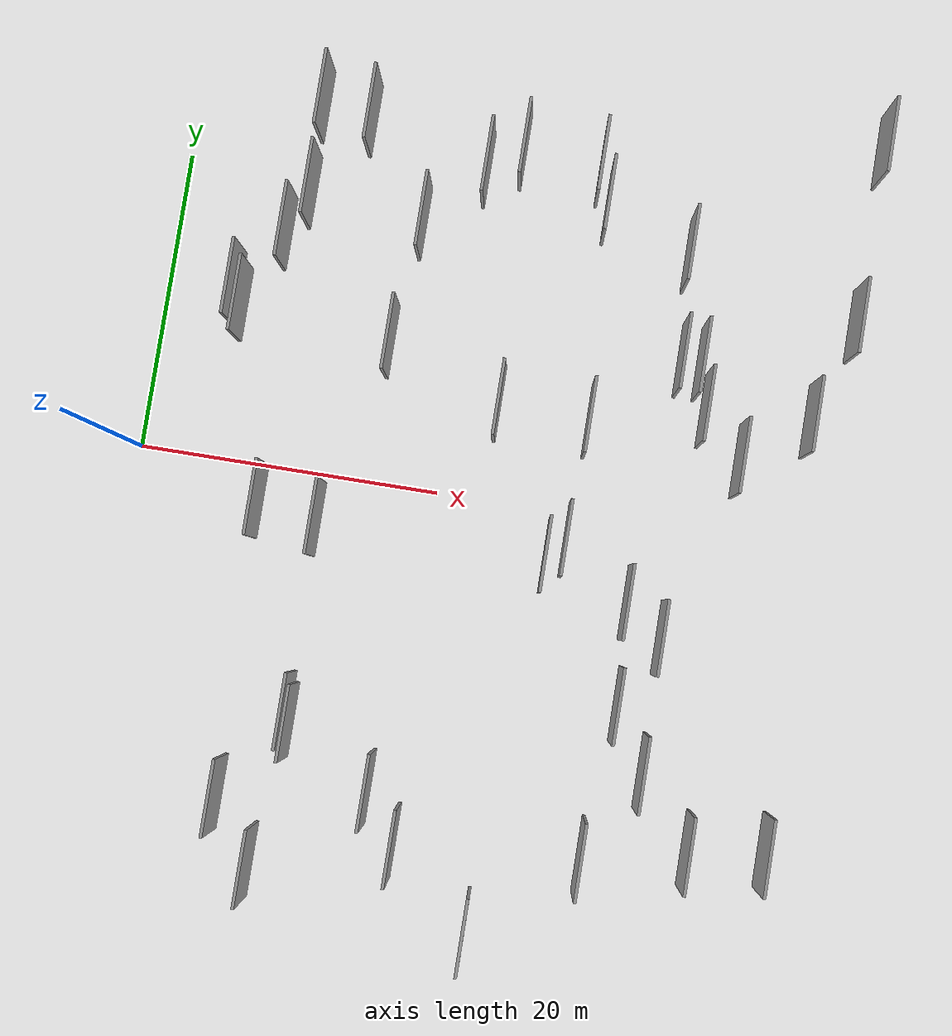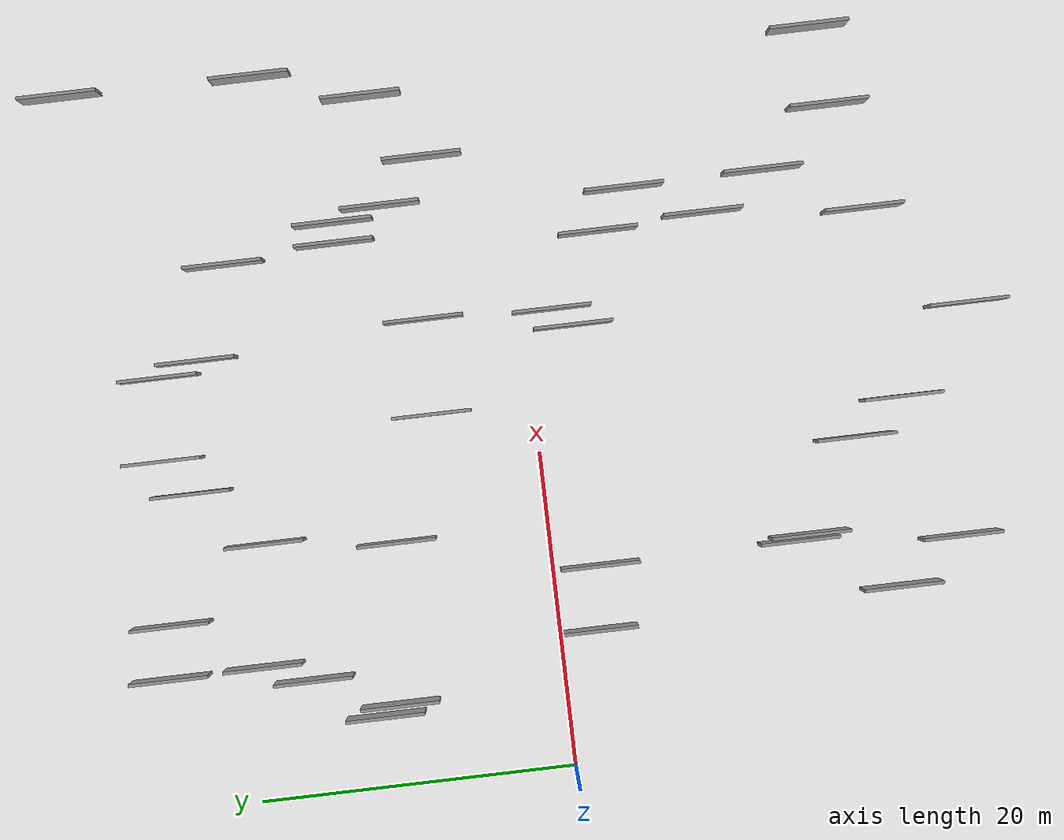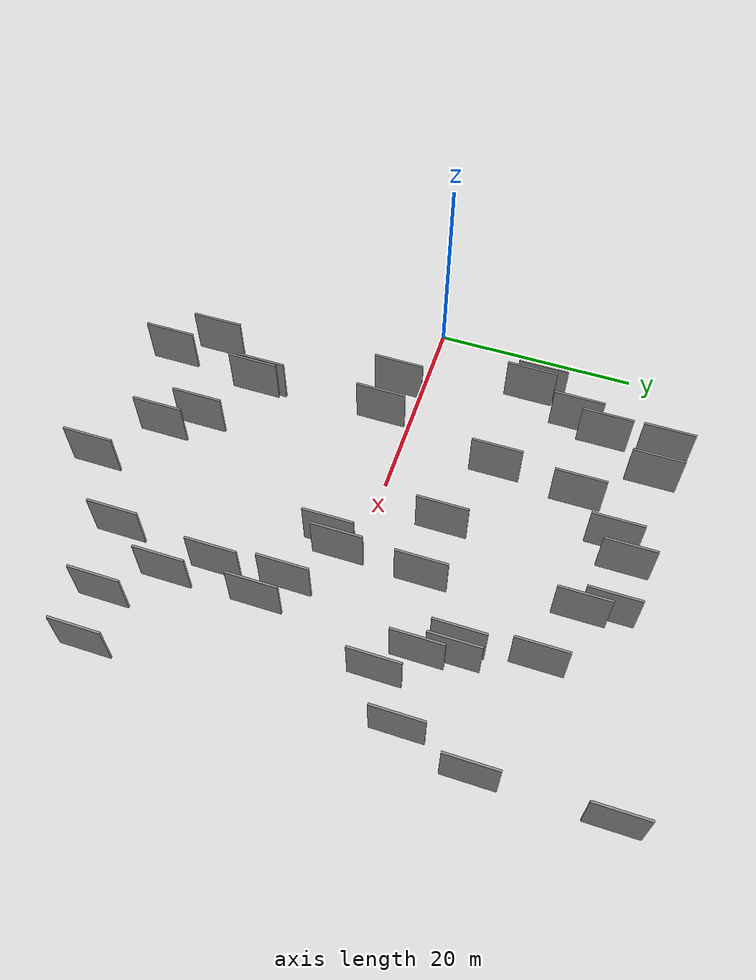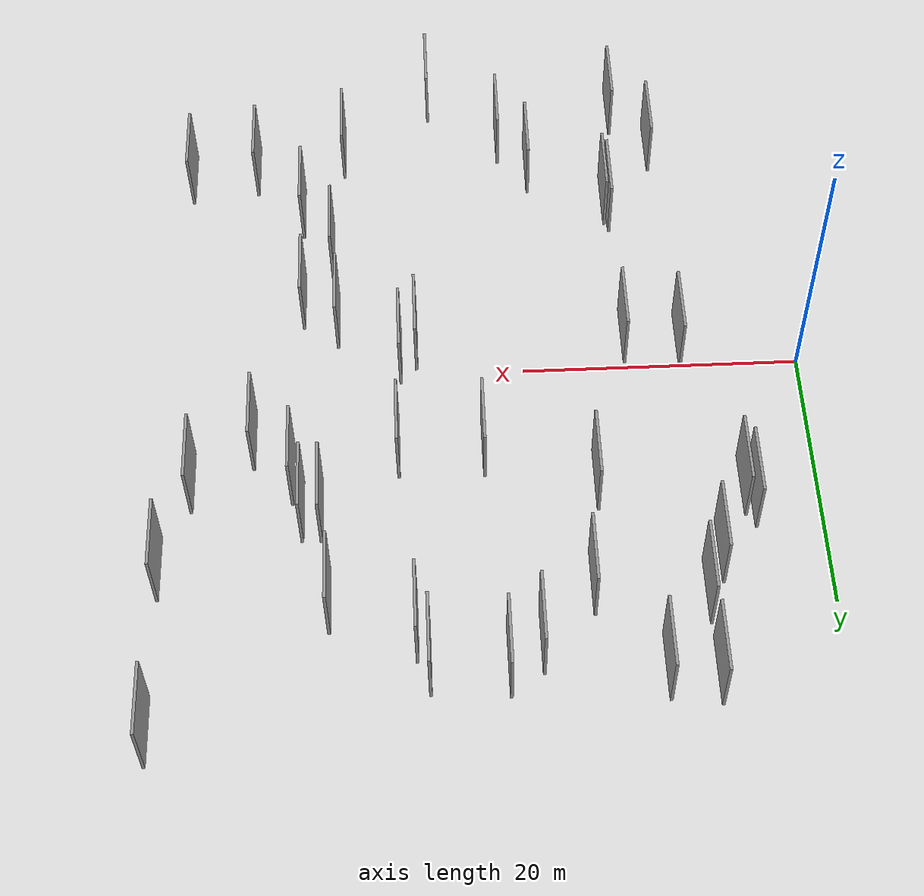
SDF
<sdf version="1.6">
 <world name="default">
  <scene>
   <sky><clouds><speed>12</speed></clouds></sky>
   <ambient>0.4 0.4 0.4 1</ambient>
   <background>0.7 0.7 0.7 1</background>
   <shadows>1</shadows>
  </scene>
  <gravity>0 0 -9.8066</gravity>
  <magnetic_field>6e-06 2.3e-05 -4.2e-05</magnetic_field>
  <physics default="0" name="default_physics" type="ode">
   <ode>
    <solver>
     <type>quick</type>
     <iters>10</iters>
     <sor>1.0</sor>
     <use_dynamic_moi_rescaling>0</use_dynamic_moi_rescaling>
    </solver>
    <constraints>
     <cfm>0</cfm>
     <erp>0.2</erp>
     <contact_max_correcting_vel>100</contact_max_correcting_vel>
     <contact_surface_layer>0.001</contact_surface_layer>
    </constraints>
   </ode>
   <max_step_size>0.004</max_step_size>
   <real_time_factor>1</real_time_factor>
   <real_time_update_rate>250</real_time_update_rate>
  </physics>
  <light name="sun" type="directional">
   <pose>0 0 10 0 0 0</pose>
   <diffuse>0.8 0.8 0.8 1</diffuse>
   <specular>0.2 0.2 0.2 1</specular>
   <attenuation>
    <range>1000</range>
    <constant>0.9</constant>
    <linear>0.01</linear>
    <quadratic>0.001</quadratic>
   </attenuation>
   <direction>-0.5 0.1 -0.9</direction>
  </light>
  <model name="grey_wall_1">
   <static>1</static>
   <pose>33.4776 -5.2390 0.0 0.000000 0.000000 1.570796</pose>
   <link name="link">
    <pose>0 0 2.50 0 0 0</pose>
    <collision name="collision"><geometry><box><size>5.00 0.2 5.00</size></box></geometry></collision>
    <visual name="visual">
     <cast_shadows>0</cast_shadows>
     <geometry><box><size>5.00 0.2 5.00</size></box></geometry>
     <material>
      <script>
       <uri>model://grey_wall/materials/scripts</uri>
       <uri>model://grey_wall/materials/textures</uri>
       <name>vrc/grey_wall</name>
      </script>
     </material>
    </visual>
   </link>
  </model>
  <model name="grey_wall_2">
   <static>1</static>
   <pose>43.6343 8.6065 0.0 0.000000 0.000000 1.570796</pose>
   <link name="link">
    <pose>0 0 2.50 0 0 0</pose>
    <collision name="collision"><geometry><box><size>5.00 0.2 5.00</size></box></geometry></collision>
    <visual name="visual">
     <cast_shadows>0</cast_shadows>
     <geometry><box><size>5.00 0.2 5.00</size></box></geometry>
     <material>
      <script>
       <uri>model://grey_wall/materials/scripts</uri>
       <uri>model://grey_wall/materials/textures</uri>
       <name>vrc/grey_wall</name>
      </script>
     </material>
    </visual>
   </link>
  </model>
  <model name="grey_wall_3">
   <static>1</static>
   <pose>7.4464 15.7247 0.0 0.000000 0.000000 1.570796</pose>
   <link name="link">
    <pose>0 0 2.50 0 0 0</pose>
    <collision name="collision"><geometry><box><size>5.00 0.2 5.00</size></box></geometry></collision>
    <visual name="visual">
     <cast_shadows>0</cast_shadows>
     <geometry><box><size>5.00 0.2 5.00</size></box></geometry>
     <material>
      <script>
       <uri>model://grey_wall/materials/scripts</uri>
       <uri>model://grey_wall/materials/textures</uri>
       <name>vrc/grey_wall</name>
      </script>
     </material>
    </visual>
   </link>
  </model>
  <model name="grey_wall_4">
   <static>1</static>
   <pose>32.9911 -21.9643 0.0 0.000000 0.000000 1.570796</pose>
   <link name="link">
    <pose>0 0 2.50 0 0 0</pose>
    <collision name="collision"><geometry><box><size>5.00 0.2 5.00</size></box></geometry></collision>
    <visual name="visual">
     <cast_shadows>0</cast_shadows>
     <geometry><box><size>5.00 0.2 5.00</size></box></geometry>
     <material>
      <script>
       <uri>model://grey_wall/materials/scripts</uri>
       <uri>model://grey_wall/materials/textures</uri>
       <name>vrc/grey_wall</name>
      </script>
     </material>
    </visual>
   </link>
  </model>
  <model name="grey_wall_5">
   <static>1</static>
   <pose>11.8727 24.2748 0.0 0.000000 0.000000 1.570796</pose>
   <link name="link">
    <pose>0 0 2.50 0 0 0</pose>
    <collision name="collision"><geometry><box><size>5.00 0.2 5.00</size></box></geometry></collision>
    <visual name="visual">
     <cast_shadows>0</cast_shadows>
     <geometry><box><size>5.00 0.2 5.00</size></box></geometry>
     <material>
      <script>
       <uri>model://grey_wall/materials/scripts</uri>
       <uri>model://grey_wall/materials/textures</uri>
       <name>vrc/grey_wall</name>
      </script>
     </material>
    </visual>
   </link>
  </model>
  <model name="grey_wall_6">
   <static>1</static>
   <pose>11.8024 -25.7305 0.0 0.000000 0.000000 1.570796</pose>
   <link name="link">
    <pose>0 0 2.50 0 0 0</pose>
    <collision name="collision"><geometry><box><size>5.00 0.2 5.00</size></box></geometry></collision>
    <visual name="visual">
     <cast_shadows>0</cast_shadows>
     <geometry><box><size>5.00 0.2 5.00</size></box></geometry>
     <material>
      <script>
       <uri>model://grey_wall/materials/scripts</uri>
       <uri>model://grey_wall/materials/textures</uri>
       <name>vrc/grey_wall</name>
      </script>
     </material>
    </visual>
   </link>
  </model>
  <model name="grey_wall_7">
   <static>1</static>
   <pose>26.3232 -27.7546 0.0 0.000000 0.000000 1.570796</pose>
   <link name="link">
    <pose>0 0 2.50 0 0 0</pose>
    <collision name="collision"><geometry><box><size>5.00 0.2 5.00</size></box></geometry></collision>
    <visual name="visual">
     <cast_shadows>0</cast_shadows>
     <geometry><box><size>5.00 0.2 5.00</size></box></geometry>
     <material>
      <script>
       <uri>model://grey_wall/materials/scripts</uri>
       <uri>model://grey_wall/materials/textures</uri>
       <name>vrc/grey_wall</name>
      </script>
     </material>
    </visual>
   </link>
  </model>
  <model name="grey_wall_8">
   <static>1</static>
   <pose>27.7636 -3.0162 0.0 0.000000 0.000000 1.570796</pose>
   <link name="link">
    <pose>0 0 2.50 0 0 0</pose>
    <collision name="collision"><geometry><box><size>5.00 0.2 5.00</size></box></geometry></collision>
    <visual name="visual">
     <cast_shadows>0</cast_shadows>
     <geometry><box><size>5.00 0.2 5.00</size></box></geometry>
     <material>
      <script>
       <uri>model://grey_wall/materials/scripts</uri>
       <uri>model://grey_wall/materials/textures</uri>
       <name>vrc/grey_wall</name>
      </script>
     </material>
    </visual>
   </link>
  </model>
  <model name="grey_wall_9">
   <static>1</static>
   <pose>39.4000 5.2313 0.0 0.000000 0.000000 1.570796</pose>
   <link name="link">
    <pose>0 0 2.50 0 0 0</pose>
    <collision name="collision"><geometry><box><size>5.00 0.2 5.00</size></box></geometry></collision>
    <visual name="visual">
     <cast_shadows>0</cast_shadows>
     <geometry><box><size>5.00 0.2 5.00</size></box></geometry>
     <material>
      <script>
       <uri>model://grey_wall/materials/scripts</uri>
       <uri>model://grey_wall/materials/textures</uri>
       <name>vrc/grey_wall</name>
      </script>
     </material>
    </visual>
   </link>
  </model>
  <model name="grey_wall_10">
   <static>1</static>
   <pose>5.2916 10.5052 0.0 0.000000 0.000000 1.570796</pose>
   <link name="link">
    <pose>0 0 2.50 0 0 0</pose>
    <collision name="collision"><geometry><box><size>5.00 0.2 5.00</size></box></geometry></collision>
    <visual name="visual">
     <cast_shadows>0</cast_shadows>
     <geometry><box><size>5.00 0.2 5.00</size></box></geometry>
     <material>
      <script>
       <uri>model://grey_wall/materials/scripts</uri>
       <uri>model://grey_wall/materials/textures</uri>
       <name>vrc/grey_wall</name>
      </script>
     </material>
    </visual>
   </link>
  </model>
  <model name="grey_wall_11">
   <static>1</static>
   <pose>8.5315 24.7250 0.0 0.000000 0.000000 1.570796</pose>
   <link name="link">
    <pose>0 0 2.50 0 0 0</pose>
    <collision name="collision"><geometry><box><size>5.00 0.2 5.00</size></box></geometry></collision>
    <visual name="visual">
     <cast_shadows>0</cast_shadows>
     <geometry><box><size>5.00 0.2 5.00</size></box></geometry>
     <material>
      <script>
       <uri>model://grey_wall/materials/scripts</uri>
       <uri>model://grey_wall/materials/textures</uri>
       <name>vrc/grey_wall</name>
      </script>
     </material>
    </visual>
   </link>
  </model>
  <model name="grey_wall_12">
   <static>1</static>
   <pose>4.6762 11.5054 0.0 0.000000 0.000000 1.570796</pose>
   <link name="link">
    <pose>0 0 2.50 0 0 0</pose>
    <collision name="collision"><geometry><box><size>5.00 0.2 5.00</size></box></geometry></collision>
    <visual name="visual">
     <cast_shadows>0</cast_shadows>
     <geometry><box><size>5.00 0.2 5.00</size></box></geometry>
     <material>
      <script>
       <uri>model://grey_wall/materials/scripts</uri>
       <uri>model://grey_wall/materials/textures</uri>
       <name>vrc/grey_wall</name>
      </script>
     </material>
    </visual>
   </link>
  </model>
  <model name="grey_wall_13">
   <static>1</static>
   <pose>35.9308 11.2643 0.0 0.000000 0.000000 1.570796</pose>
   <link name="link">
    <pose>0 0 2.50 0 0 0</pose>
    <collision name="collision"><geometry><box><size>5.00 0.2 5.00</size></box></geometry></collision>
    <visual name="visual">
     <cast_shadows>0</cast_shadows>
     <geometry><box><size>5.00 0.2 5.00</size></box></geometry>
     <material>
      <script>
       <uri>model://grey_wall/materials/scripts</uri>
       <uri>model://grey_wall/materials/textures</uri>
       <name>vrc/grey_wall</name>
      </script>
     </material>
    </visual>
   </link>
  </model>
  <model name="grey_wall_14">
   <static>1</static>
   <pose>19.9749 22.0375 0.0 0.000000 0.000000 1.570796</pose>
   <link name="link">
    <pose>0 0 2.50 0 0 0</pose>
    <collision name="collision"><geometry><box><size>5.00 0.2 5.00</size></box></geometry></collision>
    <visual name="visual">
     <cast_shadows>0</cast_shadows>
     <geometry><box><size>5.00 0.2 5.00</size></box></geometry>
     <material>
      <script>
       <uri>model://grey_wall/materials/scripts</uri>
       <uri>model://grey_wall/materials/textures</uri>
       <name>vrc/grey_wall</name>
      </script>
     </material>
    </visual>
   </link>
  </model>
  <model name="grey_wall_15">
   <static>1</static>
   <pose>23.1992 6.4730 0.0 0.000000 0.000000 1.570796</pose>
   <link name="link">
    <pose>0 0 2.50 0 0 0</pose>
    <collision name="collision"><geometry><box><size>5.00 0.2 5.00</size></box></geometry></collision>
    <visual name="visual">
     <cast_shadows>0</cast_shadows>
     <geometry><box><size>5.00 0.2 5.00</size></box></geometry>
     <material>
      <script>
       <uri>model://grey_wall/materials/scripts</uri>
       <uri>model://grey_wall/materials/textures</uri>
       <name>vrc/grey_wall</name>
      </script>
     </material>
    </visual>
   </link>
  </model>
  <model name="grey_wall_16">
   <static>1</static>
   <pose>8.6217 18.7740 0.0 0.000000 0.000000 1.570796</pose>
   <link name="link">
    <pose>0 0 2.50 0 0 0</pose>
    <collision name="collision"><geometry><box><size>5.00 0.2 5.00</size></box></geometry></collision>
    <visual name="visual">
     <cast_shadows>0</cast_shadows>
     <geometry><box><size>5.00 0.2 5.00</size></box></geometry>
     <material>
      <script>
       <uri>model://grey_wall/materials/scripts</uri>
       <uri>model://grey_wall/materials/textures</uri>
       <name>vrc/grey_wall</name>
      </script>
     </material>
    </visual>
   </link>
  </model>
  <model name="grey_wall_17">
   <static>1</static>
   <pose>22.2112 23.6121 0.0 0.000000 0.000000 1.570796</pose>
   <link name="link">
    <pose>0 0 2.50 0 0 0</pose>
    <collision name="collision"><geometry><box><size>5.00 0.2 5.00</size></box></geometry></collision>
    <visual name="visual">
     <cast_shadows>0</cast_shadows>
     <geometry><box><size>5.00 0.2 5.00</size></box></geometry>
     <material>
      <script>
       <uri>model://grey_wall/materials/scripts</uri>
       <uri>model://grey_wall/materials/textures</uri>
       <name>vrc/grey_wall</name>
      </script>
     </material>
    </visual>
   </link>
  </model>
  <model name="grey_wall_18">
   <static>1</static>
   <pose>36.1273 -15.9547 0.0 0.000000 0.000000 1.570796</pose>
   <link name="link">
    <pose>0 0 2.50 0 0 0</pose>
    <collision name="collision"><geometry><box><size>5.00 0.2 5.00</size></box></geometry></collision>
    <visual name="visual">
     <cast_shadows>0</cast_shadows>
     <geometry><box><size>5.00 0.2 5.00</size></box></geometry>
     <material>
      <script>
       <uri>model://grey_wall/materials/scripts</uri>
       <uri>model://grey_wall/materials/textures</uri>
       <name>vrc/grey_wall</name>
      </script>
     </material>
    </visual>
   </link>
  </model>
  <model name="grey_wall_19">
   <static>1</static>
   <pose>9.0757 -21.6731 0.0 0.000000 0.000000 1.570796</pose>
   <link name="link">
    <pose>0 0 2.50 0 0 0</pose>
    <collision name="collision"><geometry><box><size>5.00 0.2 5.00</size></box></geometry></collision>
    <visual name="visual">
     <cast_shadows>0</cast_shadows>
     <geometry><box><size>5.00 0.2 5.00</size></box></geometry>
     <material>
      <script>
       <uri>model://grey_wall/materials/scripts</uri>
       <uri>model://grey_wall/materials/textures</uri>
       <name>vrc/grey_wall</name>
      </script>
     </material>
    </visual>
   </link>
  </model>
  <model name="grey_wall_20">
   <static>1</static>
   <pose>12.6627 -15.5733 0.0 0.000000 0.000000 1.570796</pose>
   <link name="link">
    <pose>0 0 2.50 0 0 0</pose>
    <collision name="collision"><geometry><box><size>5.00 0.2 5.00</size></box></geometry></collision>
    <visual name="visual">
     <cast_shadows>0</cast_shadows>
     <geometry><box><size>5.00 0.2 5.00</size></box></geometry>
     <material>
      <script>
       <uri>model://grey_wall/materials/scripts</uri>
       <uri>model://grey_wall/materials/textures</uri>
       <name>vrc/grey_wall</name>
      </script>
     </material>
    </visual>
   </link>
  </model>
  <model name="grey_wall_21">
   <static>1</static>
   <pose>12.5439 -2.9651 0.0 0.000000 0.000000 1.570796</pose>
   <link name="link">
    <pose>0 0 2.50 0 0 0</pose>
    <collision name="collision"><geometry><box><size>5.00 0.2 5.00</size></box></geometry></collision>
    <visual name="visual">
     <cast_shadows>0</cast_shadows>
     <geometry><box><size>5.00 0.2 5.00</size></box></geometry>
     <material>
      <script>
       <uri>model://grey_wall/materials/scripts</uri>
       <uri>model://grey_wall/materials/textures</uri>
       <name>vrc/grey_wall</name>
      </script>
     </material>
    </visual>
   </link>
  </model>
  <model name="grey_wall_22">
   <static>1</static>
   <pose>16.3174 17.8196 0.0 0.000000 0.000000 1.570796</pose>
   <link name="link">
    <pose>0 0 2.50 0 0 0</pose>
    <collision name="collision"><geometry><box><size>5.00 0.2 5.00</size></box></geometry></collision>
    <visual name="visual">
     <cast_shadows>0</cast_shadows>
     <geometry><box><size>5.00 0.2 5.00</size></box></geometry>
     <material>
      <script>
       <uri>model://grey_wall/materials/scripts</uri>
       <uri>model://grey_wall/materials/textures</uri>
       <name>vrc/grey_wall</name>
      </script>
     </material>
    </visual>
   </link>
  </model>
  <model name="grey_wall_23">
   <static>1</static>
   <pose>28.2531 20.7871 0.0 0.000000 0.000000 1.570796</pose>
   <link name="link">
    <pose>0 0 2.50 0 0 0</pose>
    <collision name="collision"><geometry><box><size>5.00 0.2 5.00</size></box></geometry></collision>
    <visual name="visual">
     <cast_shadows>0</cast_shadows>
     <geometry><box><size>5.00 0.2 5.00</size></box></geometry>
     <material>
      <script>
       <uri>model://grey_wall/materials/scripts</uri>
       <uri>model://grey_wall/materials/textures</uri>
       <name>vrc/grey_wall</name>
      </script>
     </material>
    </visual>
   </link>
  </model>
  <model name="grey_wall_24">
   <static>1</static>
   <pose>34.6254 11.3175 0.0 0.000000 0.000000 1.570796</pose>
   <link name="link">
    <pose>0 0 2.50 0 0 0</pose>
    <collision name="collision"><geometry><box><size>5.00 0.2 5.00</size></box></geometry></collision>
    <visual name="visual">
     <cast_shadows>0</cast_shadows>
     <geometry><box><size>5.00 0.2 5.00</size></box></geometry>
     <material>
      <script>
       <uri>model://grey_wall/materials/scripts</uri>
       <uri>model://grey_wall/materials/textures</uri>
       <name>vrc/grey_wall</name>
      </script>
     </material>
    </visual>
   </link>
  </model>
  <model name="grey_wall_25">
   <static>1</static>
   <pose>39.7363 -20.5003 0.0 0.000000 0.000000 1.570796</pose>
   <link name="link">
    <pose>0 0 2.50 0 0 0</pose>
    <collision name="collision"><geometry><box><size>5.00 0.2 5.00</size></box></geometry></collision>
    <visual name="visual">
     <cast_shadows>0</cast_shadows>
     <geometry><box><size>5.00 0.2 5.00</size></box></geometry>
     <material>
      <script>
       <uri>model://grey_wall/materials/scripts</uri>
       <uri>model://grey_wall/materials/textures</uri>
       <name>vrc/grey_wall</name>
      </script>
     </material>
    </visual>
   </link>
  </model>
  <model name="grey_wall_26">
   <static>1</static>
   <pose>8.5256 -2.3839 0.0 0.000000 0.000000 1.570796</pose>
   <link name="link">
    <pose>0 0 2.50 0 0 0</pose>
    <collision name="collision"><geometry><box><size>5.00 0.2 5.00</size></box></geometry></collision>
    <visual name="visual">
     <cast_shadows>0</cast_shadows>
     <geometry><box><size>5.00 0.2 5.00</size></box></geometry>
     <material>
      <script>
       <uri>model://grey_wall/materials/scripts</uri>
       <uri>model://grey_wall/materials/textures</uri>
       <name>vrc/grey_wall</name>
      </script>
     </material>
    </visual>
   </link>
  </model>
  <model name="grey_wall_27">
   <static>1</static>
   <pose>15.4486 9.5688 0.0 0.000000 0.000000 1.570796</pose>
   <link name="link">
    <pose>0 0 2.50 0 0 0</pose>
    <collision name="collision"><geometry><box><size>5.00 0.2 5.00</size></box></geometry></collision>
    <visual name="visual">
     <cast_shadows>0</cast_shadows>
     <geometry><box><size>5.00 0.2 5.00</size></box></geometry>
     <material>
      <script>
       <uri>model://grey_wall/materials/scripts</uri>
       <uri>model://grey_wall/materials/textures</uri>
       <name>vrc/grey_wall</name>
      </script>
     </material>
    </visual>
   </link>
  </model>
  <model name="grey_wall_28">
   <static>1</static>
   <pose>12.9615 -16.2947 0.0 0.000000 0.000000 1.570796</pose>
   <link name="link">
    <pose>0 0 2.50 0 0 0</pose>
    <collision name="collision"><geometry><box><size>5.00 0.2 5.00</size></box></geometry></collision>
    <visual name="visual">
     <cast_shadows>0</cast_shadows>
     <geometry><box><size>5.00 0.2 5.00</size></box></geometry>
     <material>
      <script>
       <uri>model://grey_wall/materials/scripts</uri>
       <uri>model://grey_wall/materials/textures</uri>
       <name>vrc/grey_wall</name>
      </script>
     </material>
    </visual>
   </link>
  </model>
  <model name="grey_wall_29">
   <static>1</static>
   <pose>29.2244 6.2898 0.0 0.000000 0.000000 1.570796</pose>
   <link name="link">
    <pose>0 0 2.50 0 0 0</pose>
    <collision name="collision"><geometry><box><size>5.00 0.2 5.00</size></box></geometry></collision>
    <visual name="visual">
     <cast_shadows>0</cast_shadows>
     <geometry><box><size>5.00 0.2 5.00</size></box></geometry>
     <material>
      <script>
       <uri>model://grey_wall/materials/scripts</uri>
       <uri>model://grey_wall/materials/textures</uri>
       <name>vrc/grey_wall</name>
      </script>
     </material>
    </visual>
   </link>
  </model>
  <model name="grey_wall_30">
   <static>1</static>
   <pose>45.7859 27.4274 0.0 0.000000 0.000000 1.570796</pose>
   <link name="link">
    <pose>0 0 2.50 0 0 0</pose>
    <collision name="collision"><geometry><box><size>5.00 0.2 5.00</size></box></geometry></collision>
    <visual name="visual">
     <cast_shadows>0</cast_shadows>
     <geometry><box><size>5.00 0.2 5.00</size></box></geometry>
     <material>
      <script>
       <uri>model://grey_wall/materials/scripts</uri>
       <uri>model://grey_wall/materials/textures</uri>
       <name>vrc/grey_wall</name>
      </script>
     </material>
    </visual>
   </link>
  </model>
  <model name="grey_wall_31">
   <static>1</static>
   <pose>34.0822 18.3900 0.0 0.000000 0.000000 1.570796</pose>
   <link name="link">
    <pose>0 0 2.50 0 0 0</pose>
    <collision name="collision"><geometry><box><size>5.00 0.2 5.00</size></box></geometry></collision>
    <visual name="visual">
     <cast_shadows>0</cast_shadows>
     <geometry><box><size>5.00 0.2 5.00</size></box></geometry>
     <material>
      <script>
       <uri>model://grey_wall/materials/scripts</uri>
       <uri>model://grey_wall/materials/textures</uri>
       <name>vrc/grey_wall</name>
      </script>
     </material>
    </visual>
   </link>
  </model>
  <model name="grey_wall_32">
   <static>1</static>
   <pose>18.7188 -19.8204 0.0 0.000000 0.000000 1.570796</pose>
   <link name="link">
    <pose>0 0 2.50 0 0 0</pose>
    <collision name="collision"><geometry><box><size>5.00 0.2 5.00</size></box></geometry></collision>
    <visual name="visual">
     <cast_shadows>0</cast_shadows>
     <geometry><box><size>5.00 0.2 5.00</size></box></geometry>
     <material>
      <script>
       <uri>model://grey_wall/materials/scripts</uri>
       <uri>model://grey_wall/materials/textures</uri>
       <name>vrc/grey_wall</name>
      </script>
     </material>
    </visual>
   </link>
  </model>
  <model name="grey_wall_33">
   <static>1</static>
   <pose>36.6470 8.2010 0.0 0.000000 0.000000 1.570796</pose>
   <link name="link">
    <pose>0 0 2.50 0 0 0</pose>
    <collision name="collision"><geometry><box><size>5.00 0.2 5.00</size></box></geometry></collision>
    <visual name="visual">
     <cast_shadows>0</cast_shadows>
     <geometry><box><size>5.00 0.2 5.00</size></box></geometry>
     <material>
      <script>
       <uri>model://grey_wall/materials/scripts</uri>
       <uri>model://grey_wall/materials/textures</uri>
       <name>vrc/grey_wall</name>
      </script>
     </material>
    </visual>
   </link>
  </model>
  <model name="grey_wall_34">
   <static>1</static>
   <pose>45.6339 15.4020 0.0 0.000000 0.000000 1.570796</pose>
   <link name="link">
    <pose>0 0 2.50 0 0 0</pose>
    <collision name="collision"><geometry><box><size>5.00 0.2 5.00</size></box></geometry></collision>
    <visual name="visual">
     <cast_shadows>0</cast_shadows>
     <geometry><box><size>5.00 0.2 5.00</size></box></geometry>
     <material>
      <script>
       <uri>model://grey_wall/materials/scripts</uri>
       <uri>model://grey_wall/materials/textures</uri>
       <name>vrc/grey_wall</name>
      </script>
     </material>
    </visual>
   </link>
  </model>
  <model name="grey_wall_35">
   <static>1</static>
   <pose>44.7291 -19.8319 0.0 0.000000 0.000000 1.570796</pose>
   <link name="link">
    <pose>0 0 2.50 0 0 0</pose>
    <collision name="collision"><geometry><box><size>5.00 0.2 5.00</size></box></geometry></collision>
    <visual name="visual">
     <cast_shadows>0</cast_shadows>
     <geometry><box><size>5.00 0.2 5.00</size></box></geometry>
     <material>
      <script>
       <uri>model://grey_wall/materials/scripts</uri>
       <uri>model://grey_wall/materials/textures</uri>
       <name>vrc/grey_wall</name>
      </script>
     </material>
    </visual>
   </link>
  </model>
  <model name="grey_wall_36">
   <static>1</static>
   <pose>33.8765 -11.9014 0.0 0.000000 0.000000 1.570796</pose>
   <link name="link">
    <pose>0 0 2.50 0 0 0</pose>
    <collision name="collision"><geometry><box><size>5.00 0.2 5.00</size></box></geometry></collision>
    <visual name="visual">
     <cast_shadows>0</cast_shadows>
     <geometry><box><size>5.00 0.2 5.00</size></box></geometry>
     <material>
      <script>
       <uri>model://grey_wall/materials/scripts</uri>
       <uri>model://grey_wall/materials/textures</uri>
       <name>vrc/grey_wall</name>
      </script>
     </material>
    </visual>
   </link>
  </model>
  <model name="grey_wall_37">
   <static>1</static>
   <pose>28.9319 -1.7845 0.0 0.000000 0.000000 1.570796</pose>
   <link name="link">
    <pose>0 0 2.50 0 0 0</pose>
    <collision name="collision"><geometry><box><size>5.00 0.2 5.00</size></box></geometry></collision>
    <visual name="visual">
     <cast_shadows>0</cast_shadows>
     <geometry><box><size>5.00 0.2 5.00</size></box></geometry>
     <material>
      <script>
       <uri>model://grey_wall/materials/scripts</uri>
       <uri>model://grey_wall/materials/textures</uri>
       <name>vrc/grey_wall</name>
      </script>
     </material>
    </visual>
   </link>
  </model>
  <model name="grey_wall_38">
   <static>1</static>
   <pose>27.4513 23.2595 0.0 0.000000 0.000000 1.570796</pose>
   <link name="link">
    <pose>0 0 2.50 0 0 0</pose>
    <collision name="collision"><geometry><box><size>5.00 0.2 5.00</size></box></geometry></collision>
    <visual name="visual">
     <cast_shadows>0</cast_shadows>
     <geometry><box><size>5.00 0.2 5.00</size></box></geometry>
     <material>
      <script>
       <uri>model://grey_wall/materials/scripts</uri>
       <uri>model://grey_wall/materials/textures</uri>
       <name>vrc/grey_wall</name>
      </script>
     </material>
    </visual>
   </link>
  </model>
  <model name="grey_wall_39">
   <static>1</static>
   <pose>20.9148 -23.0282 0.0 0.000000 0.000000 1.570796</pose>
   <link name="link">
    <pose>0 0 2.50 0 0 0</pose>
    <collision name="collision"><geometry><box><size>5.00 0.2 5.00</size></box></geometry></collision>
    <visual name="visual">
     <cast_shadows>0</cast_shadows>
     <geometry><box><size>5.00 0.2 5.00</size></box></geometry>
     <material>
      <script>
       <uri>model://grey_wall/materials/scripts</uri>
       <uri>model://grey_wall/materials/textures</uri>
       <name>vrc/grey_wall</name>
      </script>
     </material>
    </visual>
   </link>
  </model>
  <model name="grey_wall_40">
   <static>1</static>
   <pose>36.0010 -7.1619 0.0 0.000000 0.000000 1.570796</pose>
   <link name="link">
    <pose>0 0 2.50 0 0 0</pose>
    <collision name="collision"><geometry><box><size>5.00 0.2 5.00</size></box></geometry></collision>
    <visual name="visual">
     <cast_shadows>0</cast_shadows>
     <geometry><box><size>5.00 0.2 5.00</size></box></geometry>
     <material>
      <script>
       <uri>model://grey_wall/materials/scripts</uri>
       <uri>model://grey_wall/materials/textures</uri>
       <name>vrc/grey_wall</name>
      </script>
     </material>
    </visual>
   </link>
  </model>
 </world>
</sdf>
